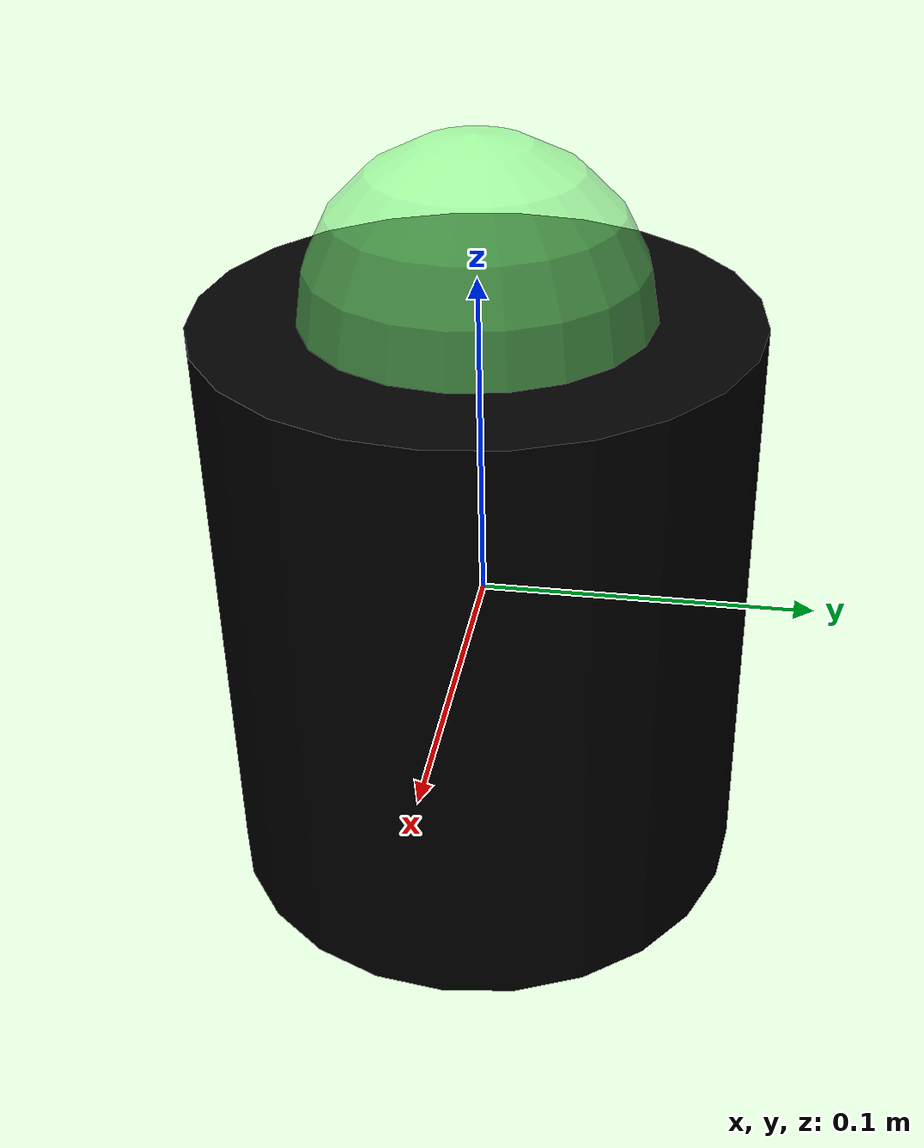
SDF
<?xml version="1.0"?>
<sdf version='1.6'>
    <world name="ros_light_control_demo_world">
        <model name="light_model">
            <static>1</static>
            <link name="housing">
                <visual name="visual">
                    <geometry>
                        <cylinder>
                            <radius>0.08</radius>
                            <length>0.18</length>
                        </cylinder>
                    </geometry>
                    <material>
                        <diffuse>0 0 0 1</diffuse>
                    </material>
                </visual>
            </link>
            <link name="led_link">
                <pose>0 0 0.09 0 0 0</pose>
                <light name="led" type="spot">
                    <pose>0 0 0.01 0 0 0</pose>
                    <attenuation>
                        <range>30</range>
                        <linear>0.05</linear>
                    </attenuation>
                    <diffuse>0 1 0 1</diffuse>
                    <specular>0 1 0 1</specular>
                </light>
                <visual name="led">
                    <geometry>
                        <sphere>
                            <radius>0.05</radius>
                        </sphere>
                    </geometry>
                    <transparency>0.4</transparency>
                    <material>
                        <ambient>0.5 1 0.5 1</ambient>
                        <diffuse>0.5 1 0.5 1</diffuse>
                        <specular>1 1 1 1</specular>
                        <emissive>0.5 1 0.5 1</emissive>
                    </material>
                </visual>
            </link>
            <joint name="joint1" type="fixed">
                <parent>housing</parent>
                <child>led_link</child>
            </joint>

            <plugin name="light_control" filename="libRosLightControlPlugin.so">
                <light_id>led_link/led</light_id>
            </plugin>
        </model>
    </world>
</sdf>
